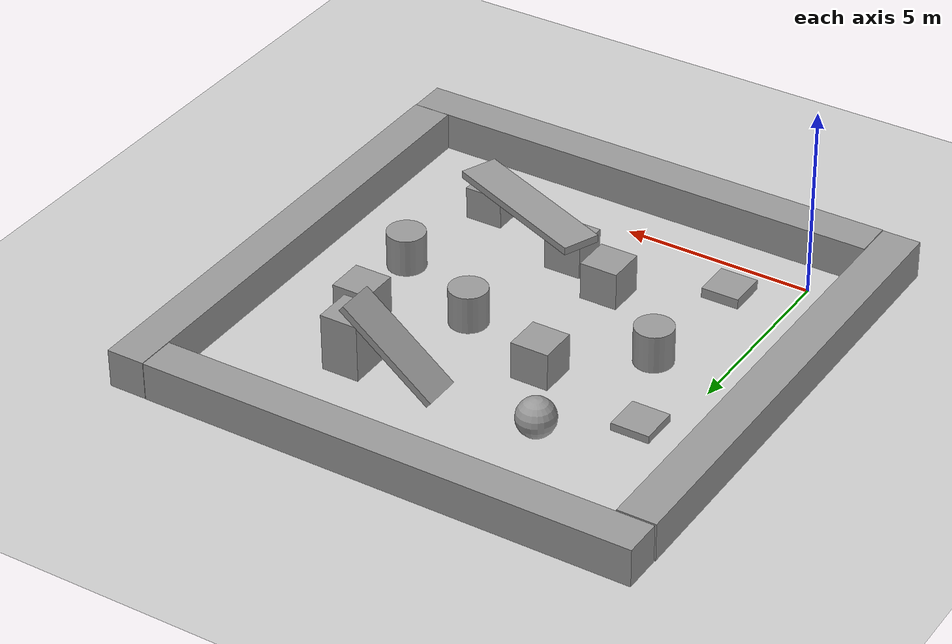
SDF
<sdf version="1.6">
 <world name="default">
  <model name="ground_plane">
   <static>1</static>
   <link name="link">
    <collision name="collision">
     <geometry><plane><normal>0 0 1</normal><size>100 100</size></plane></geometry>
     <surface><friction><ode><mu>100</mu><mu2>50</mu2></ode></friction></surface>
    </collision>
    <visual name="visual">
     <cast_shadows>0</cast_shadows>
     <geometry><plane><normal>0 0 1</normal><size>100 100</size></plane></geometry>
     <material>
      <script><uri>file://media/materials/scripts/gazebo.material</uri><name>Gazebo/Grey</name></script>
     </material>
    </visual>
   </link>
  </model>
  <light name="sun" type="directional">
   <pose>0 0 10 0 -0 0</pose>
   <diffuse>0.8 0.8 0.8 1</diffuse>
   <specular>0.1 0.1 0.1 1</specular>
   <attenuation>
    <range>1000</range>
    <constant>0.9</constant>
    <linear>0.01</linear>
    <quadratic>0.001</quadratic>
   </attenuation>
   <direction>-0.5 0.5 -1</direction>
  </light>
  <gravity>0 0 -9.8</gravity>
  <magnetic_field>6e-06 2.3e-05 -4.2e-05</magnetic_field>
  <atmosphere type="adiabatic"/>
  <physics name="default_physics" default="0" type="ode">
   <max_step_size>0.001</max_step_size>
   <real_time_factor>1</real_time_factor>
   <real_time_update_rate>1000</real_time_update_rate>
  </physics>
  <scene><ambient>0.4 0.4 0.4 1</ambient><background>0.7 0.7 0.7 1</background><shadows>1</shadows></scene>
  <spherical_coordinates>
   <surface_model>EARTH_WGS84</surface_model>
   <latitude_deg>0</latitude_deg>
   <longitude_deg>0</longitude_deg>
   <elevation>0</elevation>
   <heading_deg>0</heading_deg>
  </spherical_coordinates>
  <model name="unit_box_0">
   <pose>7.69059 8.349 0.759765 0 -0 0.002268</pose>
   <link name="link">
    <inertial>
     <mass>1</mass>
     <inertia>
      <ixx>0.166667</ixx>
      <ixy>0</ixy>
      <ixz>0</ixz>
      <iyy>0.166667</iyy>
      <iyz>0</iyz>
      <izz>0.166667</izz>
     </inertia>
    </inertial>
    <collision name="collision"><geometry><box><size>1 1 1.51953</size></box></geometry></collision>
    <visual name="visual">
     <geometry><box><size>1 1 1.51953</size></box></geometry>
     <material>
      <script><name>Gazebo/Grey</name><uri>file://media/materials/scripts/gazebo.material</uri></script>
     </material>
    </visual>
   </link>
  </model>
  <model name="unit_box_1">
   <pose>4.05824 2.6534 0.5 0 0 -5e-06</pose>
   <link name="link">
    <inertial>
     <mass>1</mass>
     <inertia>
      <ixx>0.166667</ixx>
      <ixy>0</ixy>
      <ixz>0</ixz>
      <iyy>0.166667</iyy>
      <iyz>0</iyz>
      <izz>0.166667</izz>
     </inertia>
    </inertial>
    <collision name="collision"><geometry><box><size>1 1 1</size></box></geometry></collision>
    <visual name="visual">
     <geometry><box><size>1 1 1</size></box></geometry>
     <material>
      <script><name>Gazebo/Grey</name><uri>file://media/materials/scripts/gazebo.material</uri></script>
     </material>
    </visual>
   </link>
  </model>
  <model name="unit_box_2">
   <pose>8.60807 6.53691 0.5 0 -0 5e-06</pose>
   <link name="link">
    <inertial>
     <mass>1</mass>
     <inertia>
      <ixx>0.166667</ixx>
      <ixy>0</ixy>
      <ixz>0</ixz>
      <iyy>0.166667</iyy>
      <iyz>0</iyz>
      <izz>0.166667</izz>
     </inertia>
    </inertial>
    <collision name="collision"><geometry><box><size>1 1 1</size></box></geometry></collision>
    <visual name="visual">
     <geometry><box><size>1 1 1</size></box></geometry>
     <material>
      <script><name>Gazebo/Grey</name><uri>file://media/materials/scripts/gazebo.material</uri></script>
     </material>
    </visual>
   </link>
  </model>
  <model name="unit_cylinder_0">
   <pose>6.30086 5.42879 0.499994 -3e-06 -1e-06 -0</pose>
   <link name="link">
    <inertial>
     <mass>1</mass>
     <inertia><ixx>0.145833</ixx><ixy>0</ixy><ixz>0</ixz><iyy>0.145833</iyy><iyz>0</iyz><izz>0.125</izz></inertia>
    </inertial>
    <collision name="collision">
     <geometry><cylinder><radius>0.5</radius><length>1</length></cylinder></geometry>
    </collision>
    <visual name="visual">
     <geometry><cylinder><radius>0.5</radius><length>1</length></cylinder></geometry>
     <material>
      <script><name>Gazebo/Grey</name><uri>file://media/materials/scripts/gazebo.material</uri></script>
     </material>
    </visual>
   </link>
  </model>
  <model name="unit_box_3">
   <pose>8.32633 1.05644 0.4336 -7e-06 -0 0.00179</pose>
   <link name="link">
    <inertial>
     <mass>1</mass>
     <inertia>
      <ixx>0.166667</ixx>
      <ixy>0</ixy>
      <ixz>0</ixz>
      <iyy>0.166667</iyy>
      <iyz>0</iyz>
      <izz>0.166667</izz>
     </inertia>
    </inertial>
    <collision name="collision"><geometry><box><size>1 1 0.867207</size></box></geometry></collision>
    <visual name="visual">
     <geometry><box><size>1 1 0.867207</size></box></geometry>
     <material>
      <script><name>Gazebo/Grey</name><uri>file://media/materials/scripts/gazebo.material</uri></script>
     </material>
    </visual>
   </link>
  </model>
  <model name="unit_box_4">
   <pose>5.49259 1.96554 0.442065 0 4e-06 0.003209</pose>
   <link name="link">
    <inertial>
     <mass>1</mass>
     <inertia>
      <ixx>0.166667</ixx>
      <ixy>0</ixy>
      <ixz>0</ixz>
      <iyy>0.166667</iyy>
      <iyz>0</iyz>
      <izz>0.166667</izz>
     </inertia>
    </inertial>
    <collision name="collision"><geometry><box><size>1 1 0.884126</size></box></geometry></collision>
    <visual name="visual">
     <geometry><box><size>1 1 0.884126</size></box></geometry>
     <material>
      <script><name>Gazebo/Grey</name><uri>file://media/materials/scripts/gazebo.material</uri></script>
     </material>
    </visual>
   </link>
  </model>
  <model name="unit_box_5">
   <pose>1.57172 1.08663 0.133705 0 -0 5e-06</pose>
   <link name="link">
    <inertial>
     <mass>1</mass>
     <inertia>
      <ixx>0.166667</ixx>
      <ixy>0</ixy>
      <ixz>0</ixz>
      <iyy>0.166667</iyy>
      <iyz>0</iyz>
      <izz>0.166667</izz>
     </inertia>
    </inertial>
    <collision name="collision"><geometry><box><size>1 1 0.26741</size></box></geometry></collision>
    <visual name="visual">
     <geometry><box><size>1 1 0.26741</size></box></geometry>
     <material>
      <script><name>Gazebo/Grey</name><uri>file://media/materials/scripts/gazebo.material</uri></script>
     </material>
    </visual>
   </link>
  </model>
  <model name="unit_box_6">
   <pose>6.96321 1.5972 0.977454 -0.005505 -0.002334 -1.96775</pose>
   <link name="link">
    <inertial>
     <mass>1</mass>
     <inertia>
      <ixx>0.166667</ixx>
      <ixy>0</ixy>
      <ixz>0</ixz>
      <iyy>0.166667</iyy>
      <iyz>0</iyz>
      <izz>0.166667</izz>
     </inertia>
    </inertial>
    <collision name="collision"><geometry><box><size>1 4.36041 0.198238</size></box></geometry></collision>
    <visual name="visual">
     <geometry><box><size>1 4.36041 0.198238</size></box></geometry>
     <material>
      <script><name>Gazebo/Grey</name><uri>file://media/materials/scripts/gazebo.material</uri></script>
     </material>
    </visual>
   </link>
  </model>
  <model name="unit_box_7">
   <pose>0.718594 6.89097 0.102186 0 -0 0</pose>
   <link name="link">
    <inertial>
     <mass>1</mass>
     <inertia>
      <ixx>0.166667</ixx>
      <ixy>0</ixy>
      <ixz>0</ixz>
      <iyy>0.166667</iyy>
      <iyz>0</iyz>
      <izz>0.166667</izz>
     </inertia>
    </inertial>
    <collision name="collision"><geometry><box><size>1 1 0.204372</size></box></geometry></collision>
    <visual name="visual">
     <geometry><box><size>1 1 0.204372</size></box></geometry>
     <material>
      <script><name>Gazebo/Grey</name><uri>file://media/materials/scripts/gazebo.material</uri></script>
     </material>
    </visual>
   </link>
  </model>
  <model name="unit_box_8">
   <pose>3.73945 6.34616 0.5 0 0 -5e-06</pose>
   <link name="link">
    <inertial>
     <mass>1</mass>
     <inertia>
      <ixx>0.166667</ixx>
      <ixy>0</ixy>
      <ixz>0</ixz>
      <iyy>0.166667</iyy>
      <iyz>0</iyz>
      <izz>0.166667</izz>
     </inertia>
    </inertial>
    <collision name="collision"><geometry><box><size>1 1 1</size></box></geometry></collision>
    <visual name="visual">
     <geometry><box><size>1 1 1</size></box></geometry>
     <material>
      <script><name>Gazebo/Grey</name><uri>file://media/materials/scripts/gazebo.material</uri></script>
     </material>
    </visual>
   </link>
  </model>
  <model name="unit_box_9">
   <pose>6.39107 8.37409 1.00868 1e-06 -0.668094 0.002267</pose>
   <link name="link">
    <inertial>
     <mass>1</mass>
     <inertia>
      <ixx>0.166667</ixx>
      <ixy>0</ixy>
      <ixz>0</ixz>
      <iyy>0.166667</iyy>
      <iyz>0</iyz>
      <izz>0.166667</izz>
     </inertia>
    </inertial>
    <collision name="collision"><geometry><box><size>3.01765 1 0.188477</size></box></geometry></collision>
    <visual name="visual">
     <geometry><box><size>3.01765 1 0.188477</size></box></geometry>
     <material>
      <script><name>Gazebo/Grey</name><uri>file://media/materials/scripts/gazebo.material</uri></script>
     </material>
    </visual>
   </link>
  </model>
  <model name="unit_cylinder_1">
   <pose>1.73645 4.50908 0.499996 4e-06 2e-06 -0</pose>
   <link name="link">
    <inertial>
     <mass>1</mass>
     <inertia><ixx>0.145833</ixx><ixy>0</ixy><ixz>0</ixz><iyy>0.145833</iyy><iyz>0</iyz><izz>0.125</izz></inertia>
    </inertial>
    <collision name="collision">
     <geometry><cylinder><radius>0.5</radius><length>1</length></cylinder></geometry>
    </collision>
    <visual name="visual">
     <geometry><cylinder><radius>0.5</radius><length>1</length></cylinder></geometry>
     <material>
      <script><name>Gazebo/Grey</name><uri>file://media/materials/scripts/gazebo.material</uri></script>
     </material>
    </visual>
   </link>
  </model>
  <model name="unit_cylinder_2">
   <pose>8.9064 4.15901 0.499992 -3e-06 -4e-06 -0</pose>
   <link name="link">
    <inertial>
     <mass>1</mass>
     <inertia><ixx>0.145833</ixx><ixy>0</ixy><ixz>0</ixz><iyy>0.145833</iyy><iyz>0</iyz><izz>0.125</izz></inertia>
    </inertial>
    <collision name="collision">
     <geometry><cylinder><radius>0.5</radius><length>1</length></cylinder></geometry>
    </collision>
    <visual name="visual">
     <geometry><cylinder><radius>0.5</radius><length>1</length></cylinder></geometry>
     <material>
      <script><name>Gazebo/Grey</name><uri>file://media/materials/scripts/gazebo.material</uri></script>
     </material>
    </visual>
   </link>
  </model>
  <model name="unit_sphere_0">
   <pose>2.57234 8.43226 0.5 0 -0 0</pose>
   <link name="link">
    <inertial>
     <mass>1</mass>
     <inertia><ixx>0.1</ixx><ixy>0</ixy><ixz>0</ixz><iyy>0.1</iyy><iyz>0</iyz><izz>0.1</izz></inertia>
    </inertial>
    <collision name="collision"><geometry><sphere><radius>0.5</radius></sphere></geometry></collision>
    <visual name="visual">
     <geometry><sphere><radius>0.5</radius></sphere></geometry>
     <material>
      <script><name>Gazebo/Grey</name><uri>file://media/materials/scripts/gazebo.material</uri></script>
     </material>
    </visual>
   </link>
  </model>
  <model name="unit_box_10_0">
   <link name="link">
    <inertial>
     <mass>1</mass>
     <inertia>
      <ixx>0.166667</ixx>
      <ixy>0</ixy>
      <ixz>0</ixz>
      <iyy>0.166667</iyy>
      <iyz>0</iyz>
      <izz>0.166667</izz>
     </inertia>
    </inertial>
    <visual name="visual">
     <geometry><box><size>1 12.9226 1</size></box></geometry>
     <material>
      <script><name>Gazebo/Grey</name><uri>file://media/materials/scripts/gazebo.material</uri></script>
      <ambient>0.3 0.3 0.3 1</ambient>
      <diffuse>0.7 0.7 0.7 1</diffuse>
      <specular>0.01 0.01 0.01 1</specular>
      <emissive>0 0 0 1</emissive>
     </material>
    </visual>
    <collision name="collision">
     <geometry><box><size>1 12.9226 1</size></box></geometry>
     <surface>
      <friction>
       <ode><mu>1</mu><mu2>1</mu2><fdir1>0 0 0</fdir1><slip1>0</slip1><slip2>0</slip2></ode>
       <torsional>
        <coefficient>1</coefficient>
        <patch_radius>0</patch_radius>
        <surface_radius>0</surface_radius>
        <use_patch_radius>1</use_patch_radius>
        <ode><slip>0</slip></ode>
       </torsional>
      </friction>
      <bounce><restitution_coefficient>0</restitution_coefficient><threshold>1e+06</threshold></bounce>
      <contact>
       <collide_without_contact>0</collide_without_contact>
       <collide_without_contact_bitmask>1</collide_without_contact_bitmask>
       <collide_bitmask>1</collide_bitmask>
       <ode>
        <soft_cfm>0</soft_cfm>
        <soft_erp>0.2</soft_erp>
        <kp>1e+13</kp>
        <kd>1</kd>
        <max_vel>0.01</max_vel>
        <min_depth>0</min_depth>
       </ode>
       <bullet>
        <split_impulse>1</split_impulse>
        <split_impulse_penetration_threshold>-0.01</split_impulse_penetration_threshold>
        <soft_cfm>0</soft_cfm>
        <soft_erp>0.2</soft_erp>
        <kp>1e+13</kp>
        <kd>1</kd>
       </bullet>
      </contact>
     </surface>
    </collision>
   </link>
   <static>1</static>
   <pose>-1.5 4.5 0.5 0 -0 0</pose>
  </model>
  <model name="unit_box_10_clone_clone_clone_0">
   <link name="link">
    <inertial>
     <mass>1</mass>
     <inertia>
      <ixx>0.166667</ixx>
      <ixy>0</ixy>
      <ixz>0</ixz>
      <iyy>0.166667</iyy>
      <iyz>0</iyz>
      <izz>0.166667</izz>
     </inertia>
    </inertial>
    <visual name="visual">
     <geometry><box><size>1 12.9652 1</size></box></geometry>
     <material>
      <script><name>Gazebo/Grey</name><uri>file://media/materials/scripts/gazebo.material</uri></script>
      <ambient>0.3 0.3 0.3 1</ambient>
      <diffuse>0.7 0.7 0.7 1</diffuse>
      <specular>0.01 0.01 0.01 1</specular>
      <emissive>0 0 0 1</emissive>
     </material>
    </visual>
    <collision name="collision">
     <geometry><box><size>1 12.9652 1</size></box></geometry>
     <surface>
      <friction>
       <ode><mu>1</mu><mu2>1</mu2><fdir1>0 0 0</fdir1><slip1>0</slip1><slip2>0</slip2></ode>
       <torsional>
        <coefficient>1</coefficient>
        <patch_radius>0</patch_radius>
        <surface_radius>0</surface_radius>
        <use_patch_radius>1</use_patch_radius>
        <ode><slip>0</slip></ode>
       </torsional>
      </friction>
      <bounce><restitution_coefficient>0</restitution_coefficient><threshold>1e+06</threshold></bounce>
      <contact>
       <collide_without_contact>0</collide_without_contact>
       <collide_without_contact_bitmask>1</collide_without_contact_bitmask>
       <collide_bitmask>1</collide_bitmask>
       <ode>
        <soft_cfm>0</soft_cfm>
        <soft_erp>0.2</soft_erp>
        <kp>1e+13</kp>
        <kd>1</kd>
        <max_vel>0.01</max_vel>
        <min_depth>0</min_depth>
       </ode>
       <bullet>
        <split_impulse>1</split_impulse>
        <split_impulse_penetration_threshold>-0.01</split_impulse_penetration_threshold>
        <soft_cfm>0</soft_cfm>
        <soft_erp>0.2</soft_erp>
        <kp>1e+13</kp>
        <kd>1</kd>
       </bullet>
      </contact>
     </surface>
    </collision>
   </link>
   <static>1</static>
   <pose>5.50276 -1.4878 0.5 0 -0 1.57</pose>
  </model>
  <model name="unit_box_10_clone_0">
   <link name="link">
    <inertial>
     <mass>1</mass>
     <inertia>
      <ixx>0.166667</ixx>
      <ixy>0</ixy>
      <ixz>0</ixz>
      <iyy>0.166667</iyy>
      <iyz>0</iyz>
      <izz>0.166667</izz>
     </inertia>
    </inertial>
    <visual name="visual">
     <geometry><box><size>1 12.9765 1</size></box></geometry>
     <material>
      <script><name>Gazebo/Grey</name><uri>file://media/materials/scripts/gazebo.material</uri></script>
      <ambient>0.3 0.3 0.3 1</ambient>
      <diffuse>0.7 0.7 0.7 1</diffuse>
      <specular>0.01 0.01 0.01 1</specular>
      <emissive>0 0 0 1</emissive>
     </material>
    </visual>
    <collision name="collision">
     <geometry><box><size>1 12.9765 1</size></box></geometry>
     <surface>
      <friction>
       <ode><mu>1</mu><mu2>1</mu2><fdir1>0 0 0</fdir1><slip1>0</slip1><slip2>0</slip2></ode>
       <torsional>
        <coefficient>1</coefficient>
        <patch_radius>0</patch_radius>
        <surface_radius>0</surface_radius>
        <use_patch_radius>1</use_patch_radius>
        <ode><slip>0</slip></ode>
       </torsional>
      </friction>
      <bounce><restitution_coefficient>0</restitution_coefficient><threshold>1e+06</threshold></bounce>
      <contact>
       <collide_without_contact>0</collide_without_contact>
       <collide_without_contact_bitmask>1</collide_without_contact_bitmask>
       <collide_bitmask>1</collide_bitmask>
       <ode>
        <soft_cfm>0</soft_cfm>
        <soft_erp>0.2</soft_erp>
        <kp>1e+13</kp>
        <kd>1</kd>
        <max_vel>0.01</max_vel>
        <min_depth>0</min_depth>
       </ode>
       <bullet>
        <split_impulse>1</split_impulse>
        <split_impulse_penetration_threshold>-0.01</split_impulse_penetration_threshold>
        <soft_cfm>0</soft_cfm>
        <soft_erp>0.2</soft_erp>
        <kp>1e+13</kp>
        <kd>1</kd>
       </bullet>
      </contact>
     </surface>
    </collision>
   </link>
   <static>1</static>
   <pose>11.5 5.5 0.5 0 -0 0</pose>
  </model>
  <model name="unit_box_10_clone_clone_1">
   <link name="link">
    <inertial>
     <mass>1</mass>
     <inertia>
      <ixx>0.166667</ixx>
      <ixy>0</ixy>
      <ixz>0</ixz>
      <iyy>0.166667</iyy>
      <iyz>0</iyz>
      <izz>0.166667</izz>
     </inertia>
    </inertial>
    <visual name="visual">
     <geometry><box><size>1 12.9652 1</size></box></geometry>
     <material>
      <script><name>Gazebo/Grey</name><uri>file://media/materials/scripts/gazebo.material</uri></script>
      <ambient>0.3 0.3 0.3 1</ambient>
      <diffuse>0.7 0.7 0.7 1</diffuse>
      <specular>0.01 0.01 0.01 1</specular>
      <emissive>0 0 0 1</emissive>
     </material>
    </visual>
    <collision name="collision">
     <geometry><box><size>1 12.9652 1</size></box></geometry>
     <surface>
      <friction>
       <ode><mu>1</mu><mu2>1</mu2><fdir1>0 0 0</fdir1><slip1>0</slip1><slip2>0</slip2></ode>
       <torsional>
        <coefficient>1</coefficient>
        <patch_radius>0</patch_radius>
        <surface_radius>0</surface_radius>
        <use_patch_radius>1</use_patch_radius>
        <ode><slip>0</slip></ode>
       </torsional>
      </friction>
      <bounce><restitution_coefficient>0</restitution_coefficient><threshold>1e+06</threshold></bounce>
      <contact>
       <collide_without_contact>0</collide_without_contact>
       <collide_without_contact_bitmask>1</collide_without_contact_bitmask>
       <collide_bitmask>1</collide_bitmask>
       <ode>
        <soft_cfm>0</soft_cfm>
        <soft_erp>0.2</soft_erp>
        <kp>1e+13</kp>
        <kd>1</kd>
        <max_vel>0.01</max_vel>
        <min_depth>0</min_depth>
       </ode>
       <bullet>
        <split_impulse>1</split_impulse>
        <split_impulse_penetration_threshold>-0.01</split_impulse_penetration_threshold>
        <soft_cfm>0</soft_cfm>
        <soft_erp>0.2</soft_erp>
        <kp>1e+13</kp>
        <kd>1</kd>
       </bullet>
      </contact>
     </surface>
    </collision>
   </link>
   <static>1</static>
   <pose>4.5 11.5 0.5 0 -0 1.57</pose>
  </model>
 </world>
</sdf>
